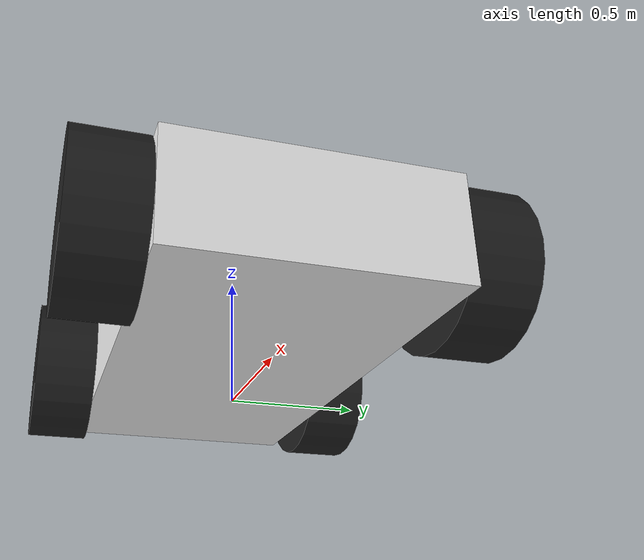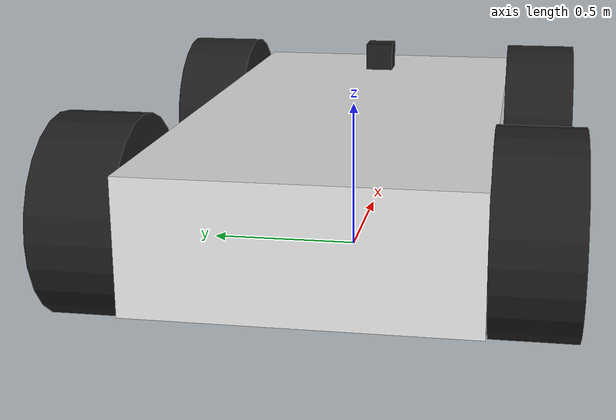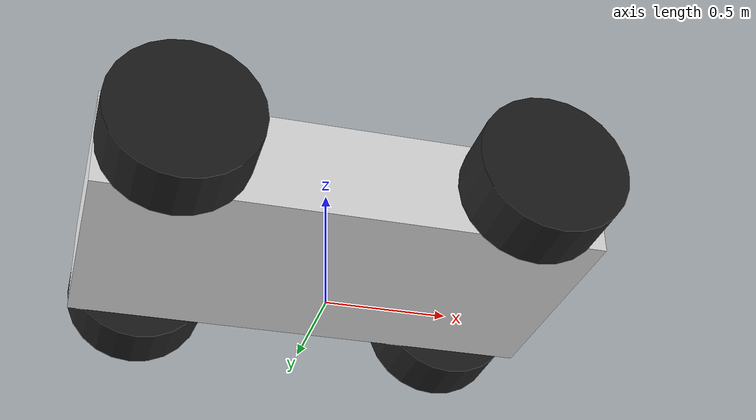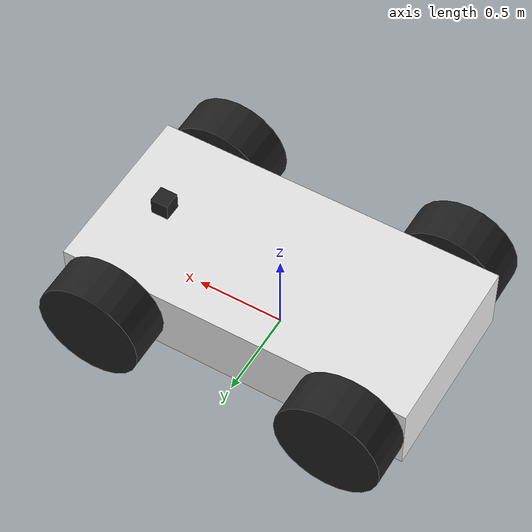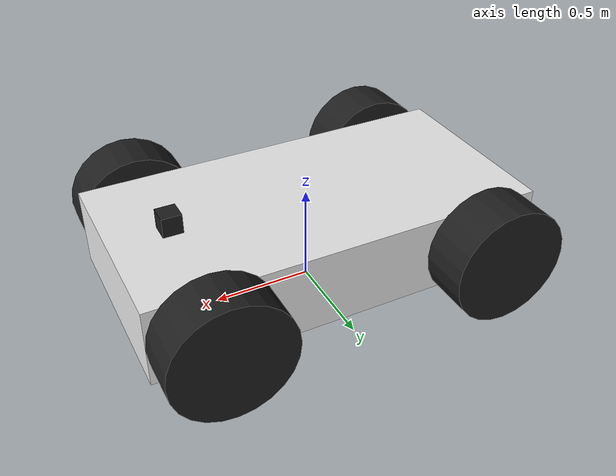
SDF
<sdf version='1.7'>
  <model name='follower_vehicle'>
    <link name='base_footprint'>
      <inertial>
        <pose>0.013725 0 0.304902 0 -0 0</pose>
        <mass>5.1</mass>
        <inertia>
          <ixx>0.489594</ixx>
          <ixy>0</ixy>
          <ixz>-0.0171569</ixz>
          <iyy>1.78763</iyy>
          <iyz>0</iyz>
          <izz>2.13151</izz>
        </inertia>
      </inertial>
      <collision name='base_footprint_fixed_joint_lump__chassis_collision'>
        <pose>0 0 0.3 0 -0 0</pose>
        <geometry>
          <box>
            <size>2 1 0.4</size>
          </box>
        </geometry>
        <surface>
          <contact>
            <ode/>
          </contact>
          <friction>
            <ode>
              <mu>0.3</mu>
              <mu2>0.3</mu2>
            </ode>
          </friction>
        </surface>
      </collision>
      <collision name='base_footprint_fixed_joint_lump__depth_camera_link_collision_1'>
        <pose>0.7 0 0.55 0 -0 0</pose>
        <geometry>
          <box>
            <size>0.1 0.1 0.1</size>
          </box>
        </geometry>
        <surface>
          <contact>
            <ode/>
          </contact>
          <friction>
            <ode/>
          </friction>
        </surface>
      </collision>
      <visual name='base_footprint_fixed_joint_lump__chassis_visual'>
        <pose>0 0 0.3 0 -0 0</pose>
        <geometry>
          <box>
            <size>2 1 0.4</size>
          </box>
        </geometry>
        <material>
          <script>
            <name>Gazebo/White</name>
            <uri>file://media/materials/scripts/gazebo.material</uri>
          </script>
        </material>
      </visual>
      <visual name='base_footprint_fixed_joint_lump__depth_camera_link_visual_1'>
        <pose>0.7 0 0.55 0 -0 0</pose>
        <geometry>
          <box>
            <size>0.1 0.1 0.1</size>
          </box>
        </geometry>
        <material>
          <script>
            <name>Gazebo/Black</name>
            <uri>file://media/materials/scripts/gazebo.material</uri>
          </script>
        </material>
      </visual>
      <sensor name='depth_camera' type='depth'>
        <update_rate>30</update_rate>
        <camera>
          <horizontal_fov>1.047</horizontal_fov>
          <image>
            <width>320</width>
            <height>240</height>
            <format>R8G8B8</format>
          </image>
          <clip>
            <near>0.1</near>
            <far>100</far>
          </clip>
        </camera>
        <plugin name='depth_camera_controller' filename='libgazebo_ros_camera.so'>
          <alwaysOn>1</alwaysOn>
          <updateRate>30.0</updateRate>
          <cameraName>depth_camera</cameraName>
          <imageTopicName>depth/image_raw</imageTopicName>
          <cameraInfoTopicName>depth/camera_info</cameraInfoTopicName>
          <frameName>depth_camera_link</frameName>
        </plugin>
        <pose>0.7 0 0.55 0 -0 0</pose>
      </sensor>
    </link>
    <joint name='front_wheel_left_joint' type='revolute'>
      <pose relative_to='base_footprint'>0.7 -0.625 0.3 1.5707 -0 0</pose>
      <parent>base_footprint</parent>
      <child>front_wheel_left</child>
      <axis>
        <xyz>0 0 1</xyz>
        <limit>
          <lower>-1e+16</lower>
          <upper>1e+16</upper>
        </limit>
        <dynamics>
          <spring_reference>0</spring_reference>
          <spring_stiffness>0</spring_stiffness>
        </dynamics>
      </axis>
    </joint>
    <link name='front_wheel_left'>
      <pose relative_to='front_wheel_left_joint'>0 0 0 0 -0 0</pose>
      <inertial>
        <pose>0 0 0 0 -0 0</pose>
        <mass>0.5</mass>
        <inertia>
          <ixx>0.0139</ixx>
          <ixy>0</ixy>
          <ixz>0</ixz>
          <iyy>0.0139</iyy>
          <iyz>0</iyz>
          <izz>0.0225</izz>
        </inertia>
      </inertial>
      <collision name='front_wheel_left_collision'>
        <pose>0 0 0 0 -0 0</pose>
        <geometry>
          <cylinder>
            <length>0.25</length>
            <radius>0.3</radius>
          </cylinder>
        </geometry>
        <surface>
          <contact>
            <ode/>
          </contact>
          <friction>
            <ode>
              <mu>5</mu>
              <mu2>5</mu2>
            </ode>
          </friction>
        </surface>
      </collision>
      <visual name='front_wheel_left_visual'>
        <pose>0 0 0 0 -0 0</pose>
        <geometry>
          <cylinder>
            <length>0.25</length>
            <radius>0.3</radius>
          </cylinder>
        </geometry>
        <material>
          <script>
            <name>Gazebo/Black</name>
            <uri>file://media/materials/scripts/gazebo.material</uri>
          </script>
        </material>
      </visual>
    </link>
    <joint name='front_wheel_right_joint' type='revolute'>
      <pose relative_to='base_footprint'>0.7 0.625 0.3 1.5707 -0 0</pose>
      <parent>base_footprint</parent>
      <child>front_wheel_right</child>
      <axis>
        <xyz>0 0 1</xyz>
        <limit>
          <lower>-1e+16</lower>
          <upper>1e+16</upper>
        </limit>
        <dynamics>
          <spring_reference>0</spring_reference>
          <spring_stiffness>0</spring_stiffness>
        </dynamics>
      </axis>
    </joint>
    <link name='front_wheel_right'>
      <pose relative_to='front_wheel_right_joint'>0 0 0 0 -0 0</pose>
      <inertial>
        <pose>0 0 0 0 -0 0</pose>
        <mass>0.5</mass>
        <inertia>
          <ixx>0.0139</ixx>
          <ixy>0</ixy>
          <ixz>0</ixz>
          <iyy>0.0139</iyy>
          <iyz>0</iyz>
          <izz>0.0225</izz>
        </inertia>
      </inertial>
      <collision name='front_wheel_right_collision'>
        <pose>0 0 0 0 -0 0</pose>
        <geometry>
          <cylinder>
            <length>0.25</length>
            <radius>0.3</radius>
          </cylinder>
        </geometry>
        <surface>
          <contact>
            <ode/>
          </contact>
          <friction>
            <ode>
              <mu>5</mu>
              <mu2>5</mu2>
            </ode>
          </friction>
        </surface>
      </collision>
      <visual name='front_wheel_right_visual'>
        <pose>0 0 0 0 -0 0</pose>
        <geometry>
          <cylinder>
            <length>0.25</length>
            <radius>0.3</radius>
          </cylinder>
        </geometry>
        <material>
          <script>
            <name>Gazebo/Black</name>
            <uri>file://media/materials/scripts/gazebo.material</uri>
          </script>
        </material>
      </visual>
    </link>
    <joint name='rear_wheel_left_joint' type='revolute'>
      <pose relative_to='base_footprint'>-0.7 -0.625 0.3 1.5707 -0 0</pose>
      <parent>base_footprint</parent>
      <child>rear_wheel_left</child>
      <axis>
        <xyz>0 0 1</xyz>
        <limit>
          <lower>-1e+16</lower>
          <upper>1e+16</upper>
        </limit>
        <dynamics>
          <spring_reference>0</spring_reference>
          <spring_stiffness>0</spring_stiffness>
        </dynamics>
      </axis>
    </joint>
    <link name='rear_wheel_left'>
      <pose relative_to='rear_wheel_left_joint'>0 0 0 0 -0 0</pose>
      <inertial>
        <pose>0 0 0 0 -0 0</pose>
        <mass>0.5</mass>
        <inertia>
          <ixx>0.0139</ixx>
          <ixy>0</ixy>
          <ixz>0</ixz>
          <iyy>0.0139</iyy>
          <iyz>0</iyz>
          <izz>0.0225</izz>
        </inertia>
      </inertial>
      <collision name='rear_wheel_left_collision'>
        <pose>0 0 0 0 -0 0</pose>
        <geometry>
          <cylinder>
            <length>0.25</length>
            <radius>0.3</radius>
          </cylinder>
        </geometry>
        <surface>
          <contact>
            <ode/>
          </contact>
          <friction>
            <ode>
              <mu>10</mu>
              <mu2>10</mu2>
            </ode>
          </friction>
        </surface>
      </collision>
      <visual name='rear_wheel_left_visual'>
        <pose>0 0 0 0 -0 0</pose>
        <geometry>
          <cylinder>
            <length>0.25</length>
            <radius>0.3</radius>
          </cylinder>
        </geometry>
        <material>
          <script>
            <name>Gazebo/Black</name>
            <uri>file://media/materials/scripts/gazebo.material</uri>
          </script>
        </material>
      </visual>
    </link>
    <joint name='rear_wheel_right_joint' type='revolute'>
      <pose relative_to='base_footprint'>-0.7 0.625 0.3 1.5707 -0 0</pose>
      <parent>base_footprint</parent>
      <child>rear_wheel_right</child>
      <axis>
        <xyz>0 0 1</xyz>
        <limit>
          <lower>-1e+16</lower>
          <upper>1e+16</upper>
        </limit>
        <dynamics>
          <spring_reference>0</spring_reference>
          <spring_stiffness>0</spring_stiffness>
        </dynamics>
      </axis>
    </joint>
    <link name='rear_wheel_right'>
      <pose relative_to='rear_wheel_right_joint'>0 0 0 0 -0 0</pose>
      <inertial>
        <pose>0 0 0 0 -0 0</pose>
        <mass>0.5</mass>
        <inertia>
          <ixx>0.0139</ixx>
          <ixy>0</ixy>
          <ixz>0</ixz>
          <iyy>0.0139</iyy>
          <iyz>0</iyz>
          <izz>0.0225</izz>
        </inertia>
      </inertial>
      <collision name='rear_wheel_right_collision'>
        <pose>0 0 0 0 -0 0</pose>
        <geometry>
          <cylinder>
            <length>0.25</length>
            <radius>0.3</radius>
          </cylinder>
        </geometry>
        <surface>
          <contact>
            <ode/>
          </contact>
          <friction>
            <ode>
              <mu>10</mu>
              <mu2>10</mu2>
            </ode>
          </friction>
        </surface>
      </collision>
      <visual name='rear_wheel_right_visual'>
        <pose>0 0 0 0 -0 0</pose>
        <geometry>
          <cylinder>
            <length>0.25</length>
            <radius>0.3</radius>
          </cylinder>
        </geometry>
        <material>
          <script>
            <name>Gazebo/Black</name>
            <uri>file://media/materials/scripts/gazebo.material</uri>
          </script>
        </material>
      </visual>
    </link>
    <plugin name='planar_move' filename='libgazebo_ros_planar_move.so'>
      <commandTopic>cmd_vel</commandTopic>
      <odometryTopic>odom</odometryTopic>
      <odometryFrame>odom</odometryFrame>
      <robotBaseFrame>base_footprint</robotBaseFrame>
      <odometryRate>50</odometryRate>
      <cmdTimeout>0.5</cmdTimeout>
      <robotNamespace>/</robotNamespace>
    </plugin>
    <frame name='chassis_depth_camera_fixed' attached_to='chassis'>
      <pose>0.7 0 0.25 0 -0 0</pose>
    </frame>
    <frame name='depth_camera_link' attached_to='chassis_depth_camera_fixed'/>
    <frame name='base_joint' attached_to='base_footprint'>
      <pose>0 0 0.3 0 -0 0</pose>
    </frame>
    <frame name='chassis' attached_to='base_joint'/>
  </model>
</sdf>
